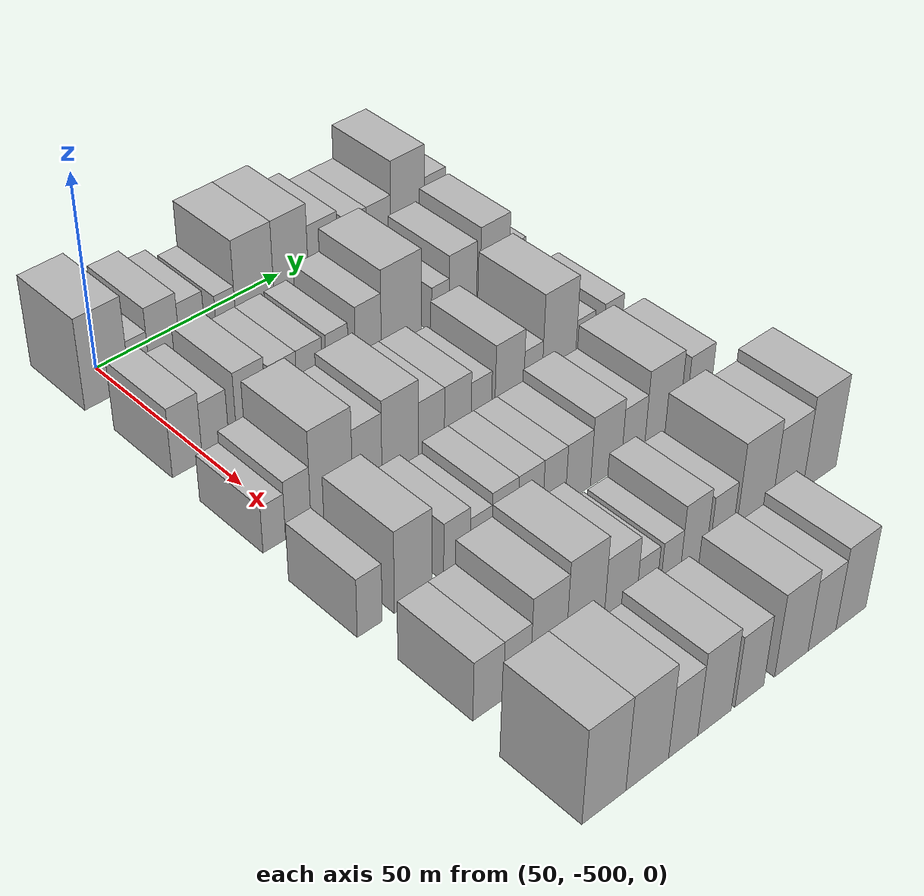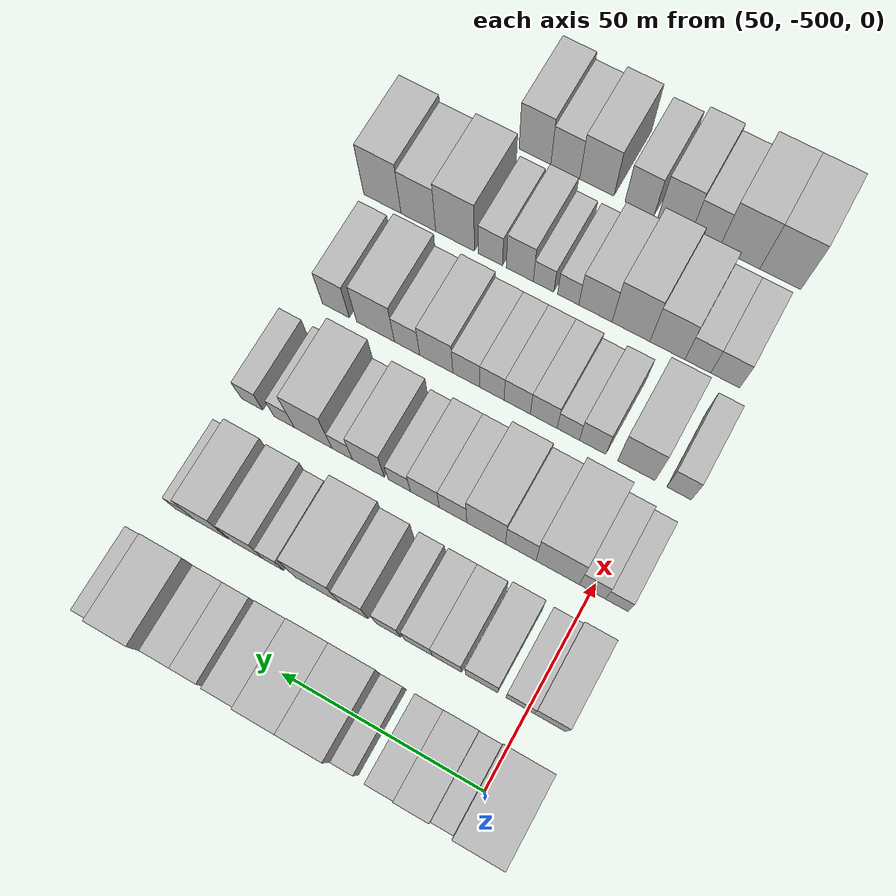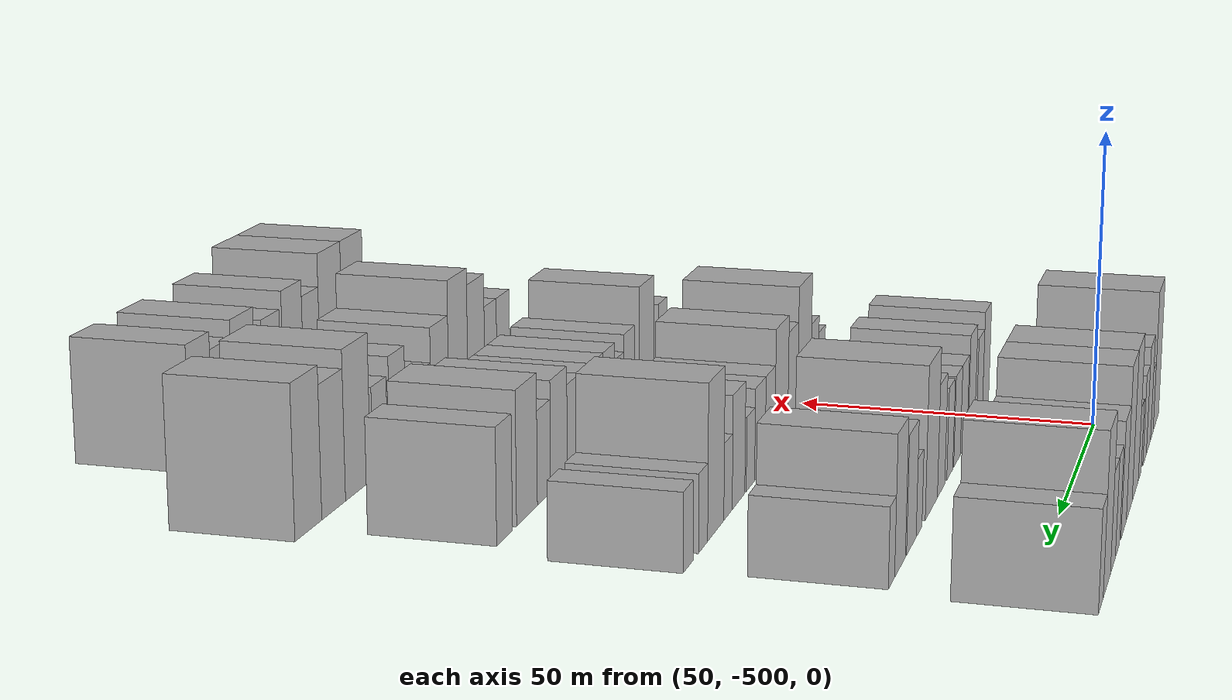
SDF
<sdf version="1.6">
 <world name="default">
  <model name="building_1">
   <static>1</static>
   <pose>50.0000 -504.2322 0 0.000000 0.000000 0.000000</pose>
   <link name="link">
    <pose>0 0 12.00 0 0 0</pose>
    <collision name="collision"><geometry><box><size>20.0000 11.5356 24.0000</size></box></geometry></collision>
    <visual name="visual">
     <cast_shadows>0</cast_shadows>
     <geometry><box><size>20.0000 11.5356 24.0000</size></box></geometry>
     <material>
      <script>
       <uri>model://HANNAS_wall/materials/scripts</uri>
       <uri>model://HANNAS_wall/materials/textures</uri>
       <name>vrc/HANNAS_wall</name>
      </script>
     </material>
    </visual>
   </link>
  </model>
  <model name="building_2">
   <static>1</static>
   <pose>50.0000 -495.8121 0 0.000000 0.000000 0.000000</pose>
   <link name="link">
    <pose>0 0 6.00 0 0 0</pose>
    <collision name="collision"><geometry><box><size>20.0000 5.3046 12.0000</size></box></geometry></collision>
    <visual name="visual">
     <cast_shadows>0</cast_shadows>
     <geometry><box><size>20.0000 5.3046 12.0000</size></box></geometry>
     <material>
      <script>
       <uri>model://HANNAS_wall/materials/scripts</uri>
       <uri>model://HANNAS_wall/materials/textures</uri>
       <name>vrc/HANNAS_wall</name>
      </script>
     </material>
    </visual>
   </link>
  </model>
  <model name="building_3">
   <static>1</static>
   <pose>50.0000 -489.0806 0 0.000000 0.000000 0.000000</pose>
   <link name="link">
    <pose>0 0 9.00 0 0 0</pose>
    <collision name="collision"><geometry><box><size>20.0000 8.1584 18.0000</size></box></geometry></collision>
    <visual name="visual">
     <cast_shadows>0</cast_shadows>
     <geometry><box><size>20.0000 8.1584 18.0000</size></box></geometry>
     <material>
      <script>
       <uri>model://HANNAS_wall/materials/scripts</uri>
       <uri>model://HANNAS_wall/materials/textures</uri>
       <name>vrc/HANNAS_wall</name>
      </script>
     </material>
    </visual>
   </link>
  </model>
  <model name="building_4">
   <static>1</static>
   <pose>50.0000 -481.6088 0 0.000000 0.000000 0.000000</pose>
   <link name="link">
    <pose>0 0 7.50 0 0 0</pose>
    <collision name="collision"><geometry><box><size>20.0000 6.7853 15.0000</size></box></geometry></collision>
    <visual name="visual">
     <cast_shadows>0</cast_shadows>
     <geometry><box><size>20.0000 6.7853 15.0000</size></box></geometry>
     <material>
      <script>
       <uri>model://HANNAS_wall/materials/scripts</uri>
       <uri>model://HANNAS_wall/materials/textures</uri>
       <name>vrc/HANNAS_wall</name>
      </script>
     </material>
    </visual>
   </link>
  </model>
  <model name="building_5">
   <static>1</static>
   <pose>50.0000 -472.5507 0 0.000000 0.000000 0.000000</pose>
   <link name="link">
    <pose>0 0 6.00 0 0 0</pose>
    <collision name="collision"><geometry><box><size>20.0000 5.3309 12.0000</size></box></geometry></collision>
    <visual name="visual">
     <cast_shadows>0</cast_shadows>
     <geometry><box><size>20.0000 5.3309 12.0000</size></box></geometry>
     <material>
      <script>
       <uri>model://HANNAS_wall/materials/scripts</uri>
       <uri>model://HANNAS_wall/materials/textures</uri>
       <name>vrc/HANNAS_wall</name>
      </script>
     </material>
    </visual>
   </link>
  </model>
  <model name="building_6">
   <static>1</static>
   <pose>50.0000 -464.5180 0 0.000000 0.000000 0.000000</pose>
   <link name="link">
    <pose>0 0 12.00 0 0 0</pose>
    <collision name="collision"><geometry><box><size>20.0000 10.7343 24.0000</size></box></geometry></collision>
    <visual name="visual">
     <cast_shadows>0</cast_shadows>
     <geometry><box><size>20.0000 10.7343 24.0000</size></box></geometry>
     <material>
      <script>
       <uri>model://HANNAS_wall/materials/scripts</uri>
       <uri>model://HANNAS_wall/materials/textures</uri>
       <name>vrc/HANNAS_wall</name>
      </script>
     </material>
    </visual>
   </link>
  </model>
  <model name="building_7">
   <static>1</static>
   <pose>50.0000 -454.2369 0 0.000000 0.000000 0.000000</pose>
   <link name="link">
    <pose>0 0 12.00 0 0 0</pose>
    <collision name="collision"><geometry><box><size>20.0000 9.8279 24.0000</size></box></geometry></collision>
    <visual name="visual">
     <cast_shadows>0</cast_shadows>
     <geometry><box><size>20.0000 9.8279 24.0000</size></box></geometry>
     <material>
      <script>
       <uri>model://HANNAS_wall/materials/scripts</uri>
       <uri>model://HANNAS_wall/materials/textures</uri>
       <name>vrc/HANNAS_wall</name>
      </script>
     </material>
    </visual>
   </link>
  </model>
  <model name="building_8">
   <static>1</static>
   <pose>50.0000 -445.0070 0 0.000000 0.000000 0.000000</pose>
   <link name="link">
    <pose>0 0 9.00 0 0 0</pose>
    <collision name="collision"><geometry><box><size>20.0000 8.6320 18.0000</size></box></geometry></collision>
    <visual name="visual">
     <cast_shadows>0</cast_shadows>
     <geometry><box><size>20.0000 8.6320 18.0000</size></box></geometry>
     <material>
      <script>
       <uri>model://HANNAS_wall/materials/scripts</uri>
       <uri>model://HANNAS_wall/materials/textures</uri>
       <name>vrc/HANNAS_wall</name>
      </script>
     </material>
    </visual>
   </link>
  </model>
  <model name="building_9">
   <static>1</static>
   <pose>50.0000 -435.4246 0 0.000000 0.000000 0.000000</pose>
   <link name="link">
    <pose>0 0 7.50 0 0 0</pose>
    <collision name="collision"><geometry><box><size>20.0000 6.5329 15.0000</size></box></geometry></collision>
    <visual name="visual">
     <cast_shadows>0</cast_shadows>
     <geometry><box><size>20.0000 6.5329 15.0000</size></box></geometry>
     <material>
      <script>
       <uri>model://HANNAS_wall/materials/scripts</uri>
       <uri>model://HANNAS_wall/materials/textures</uri>
       <name>vrc/HANNAS_wall</name>
      </script>
     </material>
    </visual>
   </link>
  </model>
  <model name="building_10">
   <static>1</static>
   <pose>50.0000 -428.5319 0 0.000000 0.000000 0.000000</pose>
   <link name="link">
    <pose>0 0 7.50 0 0 0</pose>
    <collision name="collision"><geometry><box><size>20.0000 7.2525 15.0000</size></box></geometry></collision>
    <visual name="visual">
     <cast_shadows>0</cast_shadows>
     <geometry><box><size>20.0000 7.2525 15.0000</size></box></geometry>
     <material>
      <script>
       <uri>model://HANNAS_wall/materials/scripts</uri>
       <uri>model://HANNAS_wall/materials/textures</uri>
       <name>vrc/HANNAS_wall</name>
      </script>
     </material>
    </visual>
   </link>
  </model>
  <model name="building_11">
   <static>1</static>
   <pose>50.0000 -419.7696 0 0.000000 0.000000 0.000000</pose>
   <link name="link">
    <pose>0 0 12.00 0 0 0</pose>
    <collision name="collision"><geometry><box><size>20.0000 10.2719 24.0000</size></box></geometry></collision>
    <visual name="visual">
     <cast_shadows>0</cast_shadows>
     <geometry><box><size>20.0000 10.2719 24.0000</size></box></geometry>
     <material>
      <script>
       <uri>model://HANNAS_wall/materials/scripts</uri>
       <uri>model://HANNAS_wall/materials/textures</uri>
       <name>vrc/HANNAS_wall</name>
      </script>
     </material>
    </visual>
   </link>
  </model>
  <model name="building_12">
   <static>1</static>
   <pose>50.0000 -411.3486 0 0.000000 0.000000 0.000000</pose>
   <link name="link">
    <pose>0 0 7.50 0 0 0</pose>
    <collision name="collision"><geometry><box><size>20.0000 6.5702 15.0000</size></box></geometry></collision>
    <visual name="visual">
     <cast_shadows>0</cast_shadows>
     <geometry><box><size>20.0000 6.5702 15.0000</size></box></geometry>
     <material>
      <script>
       <uri>model://HANNAS_wall/materials/scripts</uri>
       <uri>model://HANNAS_wall/materials/textures</uri>
       <name>vrc/HANNAS_wall</name>
      </script>
     </material>
    </visual>
   </link>
  </model>
  <model name="building_112">
   <static>1</static>
   <pose>79.0000 -505.1953 0 0.000000 0.000000 0.000000</pose>
   <link name="link">
    <pose>0 0 9.00 0 0 0</pose>
    <collision name="collision"><geometry><box><size>20.0000 7.6095 18.0000</size></box></geometry></collision>
    <visual name="visual">
     <cast_shadows>0</cast_shadows>
     <geometry><box><size>20.0000 7.6095 18.0000</size></box></geometry>
     <material>
      <script>
       <uri>model://HANNAS_wall/materials/scripts</uri>
       <uri>model://HANNAS_wall/materials/textures</uri>
       <name>vrc/HANNAS_wall</name>
      </script>
     </material>
    </visual>
   </link>
  </model>
  <model name="building_113">
   <static>1</static>
   <pose>79.0000 -497.9632 0 0.000000 0.000000 0.000000</pose>
   <link name="link">
    <pose>0 0 7.50 0 0 0</pose>
    <collision name="collision"><geometry><box><size>20.0000 6.8546 15.0000</size></box></geometry></collision>
    <visual name="visual">
     <cast_shadows>0</cast_shadows>
     <geometry><box><size>20.0000 6.8546 15.0000</size></box></geometry>
     <material>
      <script>
       <uri>model://HANNAS_wall/materials/scripts</uri>
       <uri>model://HANNAS_wall/materials/textures</uri>
       <name>vrc/HANNAS_wall</name>
      </script>
     </material>
    </visual>
   </link>
  </model>
  <model name="building_114">
   <static>1</static>
   <pose>79.0000 -488.6373 0 0.000000 0.000000 0.000000</pose>
   <link name="link">
    <pose>0 0 9.00 0 0 0</pose>
    <collision name="collision"><geometry><box><size>20.0000 7.7972 18.0000</size></box></geometry></collision>
    <visual name="visual">
     <cast_shadows>0</cast_shadows>
     <geometry><box><size>20.0000 7.7972 18.0000</size></box></geometry>
     <material>
      <script>
       <uri>model://HANNAS_wall/materials/scripts</uri>
       <uri>model://HANNAS_wall/materials/textures</uri>
       <name>vrc/HANNAS_wall</name>
      </script>
     </material>
    </visual>
   </link>
  </model>
  <model name="building_115">
   <static>1</static>
   <pose>79.0000 -480.0844 0 0.000000 0.000000 0.000000</pose>
   <link name="link">
    <pose>0 0 7.50 0 0 0</pose>
    <collision name="collision"><geometry><box><size>20.0000 7.3085 15.0000</size></box></geometry></collision>
    <visual name="visual">
     <cast_shadows>0</cast_shadows>
     <geometry><box><size>20.0000 7.3085 15.0000</size></box></geometry>
     <material>
      <script>
       <uri>model://HANNAS_wall/materials/scripts</uri>
       <uri>model://HANNAS_wall/materials/textures</uri>
       <name>vrc/HANNAS_wall</name>
      </script>
     </material>
    </visual>
   </link>
  </model>
  <model name="building_116">
   <static>1</static>
   <pose>79.0000 -472.9844 0 0.000000 0.000000 0.000000</pose>
   <link name="link">
    <pose>0 0 7.50 0 0 0</pose>
    <collision name="collision"><geometry><box><size>20.0000 6.8915 15.0000</size></box></geometry></collision>
    <visual name="visual">
     <cast_shadows>0</cast_shadows>
     <geometry><box><size>20.0000 6.8915 15.0000</size></box></geometry>
     <material>
      <script>
       <uri>model://HANNAS_wall/materials/scripts</uri>
       <uri>model://HANNAS_wall/materials/textures</uri>
       <name>vrc/HANNAS_wall</name>
      </script>
     </material>
    </visual>
   </link>
  </model>
  <model name="building_117">
   <static>1</static>
   <pose>79.0000 -465.4808 0 0.000000 0.000000 0.000000</pose>
   <link name="link">
    <pose>0 0 7.50 0 0 0</pose>
    <collision name="collision"><geometry><box><size>20.0000 6.1158 15.0000</size></box></geometry></collision>
    <visual name="visual">
     <cast_shadows>0</cast_shadows>
     <geometry><box><size>20.0000 6.1158 15.0000</size></box></geometry>
     <material>
      <script>
       <uri>model://HANNAS_wall/materials/scripts</uri>
       <uri>model://HANNAS_wall/materials/textures</uri>
       <name>vrc/HANNAS_wall</name>
      </script>
     </material>
    </visual>
   </link>
  </model>
  <model name="building_118">
   <static>1</static>
   <pose>79.0000 -456.8149 0 0.000000 0.000000 0.000000</pose>
   <link name="link">
    <pose>0 0 9.00 0 0 0</pose>
    <collision name="collision"><geometry><box><size>20.0000 7.2160 18.0000</size></box></geometry></collision>
    <visual name="visual">
     <cast_shadows>0</cast_shadows>
     <geometry><box><size>20.0000 7.2160 18.0000</size></box></geometry>
     <material>
      <script>
       <uri>model://HANNAS_wall/materials/scripts</uri>
       <uri>model://HANNAS_wall/materials/textures</uri>
       <name>vrc/HANNAS_wall</name>
      </script>
     </material>
    </visual>
   </link>
  </model>
  <model name="building_119">
   <static>1</static>
   <pose>79.0000 -447.4675 0 0.000000 0.000000 0.000000</pose>
   <link name="link">
    <pose>0 0 12.00 0 0 0</pose>
    <collision name="collision"><geometry><box><size>20.0000 11.4788 24.0000</size></box></geometry></collision>
    <visual name="visual">
     <cast_shadows>0</cast_shadows>
     <geometry><box><size>20.0000 11.4788 24.0000</size></box></geometry>
     <material>
      <script>
       <uri>model://HANNAS_wall/materials/scripts</uri>
       <uri>model://HANNAS_wall/materials/textures</uri>
       <name>vrc/HANNAS_wall</name>
      </script>
     </material>
    </visual>
   </link>
  </model>
  <model name="building_120">
   <static>1</static>
   <pose>79.0000 -436.1550 0 0.000000 0.000000 0.000000</pose>
   <link name="link">
    <pose>0 0 6.00 0 0 0</pose>
    <collision name="collision"><geometry><box><size>20.0000 5.1464 12.0000</size></box></geometry></collision>
    <visual name="visual">
     <cast_shadows>0</cast_shadows>
     <geometry><box><size>20.0000 5.1464 12.0000</size></box></geometry>
     <material>
      <script>
       <uri>model://HANNAS_wall/materials/scripts</uri>
       <uri>model://HANNAS_wall/materials/textures</uri>
       <name>vrc/HANNAS_wall</name>
      </script>
     </material>
    </visual>
   </link>
  </model>
  <model name="building_121">
   <static>1</static>
   <pose>79.0000 -429.4389 0 0.000000 0.000000 0.000000</pose>
   <link name="link">
    <pose>0 0 9.00 0 0 0</pose>
    <collision name="collision"><geometry><box><size>20.0000 8.2857 18.0000</size></box></geometry></collision>
    <visual name="visual">
     <cast_shadows>0</cast_shadows>
     <geometry><box><size>20.0000 8.2857 18.0000</size></box></geometry>
     <material>
      <script>
       <uri>model://HANNAS_wall/materials/scripts</uri>
       <uri>model://HANNAS_wall/materials/textures</uri>
       <name>vrc/HANNAS_wall</name>
      </script>
     </material>
    </visual>
   </link>
  </model>
  <model name="building_122">
   <static>1</static>
   <pose>79.0000 -419.8780 0 0.000000 0.000000 0.000000</pose>
   <link name="link">
    <pose>0 0 10.50 0 0 0</pose>
    <collision name="collision"><geometry><box><size>20.0000 8.8362 21.0000</size></box></geometry></collision>
    <visual name="visual">
     <cast_shadows>0</cast_shadows>
     <geometry><box><size>20.0000 8.8362 21.0000</size></box></geometry>
     <material>
      <script>
       <uri>model://HANNAS_wall/materials/scripts</uri>
       <uri>model://HANNAS_wall/materials/textures</uri>
       <name>vrc/HANNAS_wall</name>
      </script>
     </material>
    </visual>
   </link>
  </model>
  <model name="building_123">
   <static>1</static>
   <pose>79.0000 -412.9534 0 0.000000 0.000000 0.000000</pose>
   <link name="link">
    <pose>0 0 6.00 0 0 0</pose>
    <collision name="collision"><geometry><box><size>20.0000 5.0129 12.0000</size></box></geometry></collision>
    <visual name="visual">
     <cast_shadows>0</cast_shadows>
     <geometry><box><size>20.0000 5.0129 12.0000</size></box></geometry>
     <material>
      <script>
       <uri>model://HANNAS_wall/materials/scripts</uri>
       <uri>model://HANNAS_wall/materials/textures</uri>
       <name>vrc/HANNAS_wall</name>
      </script>
     </material>
    </visual>
   </link>
  </model>
  <model name="building_230">
   <static>1</static>
   <pose>108.0000 -506.1932 0 0.000000 0.000000 0.000000</pose>
   <link name="link">
    <pose>0 0 6.00 0 0 0</pose>
    <collision name="collision"><geometry><box><size>20.0000 5.6136 12.0000</size></box></geometry></collision>
    <visual name="visual">
     <cast_shadows>0</cast_shadows>
     <geometry><box><size>20.0000 5.6136 12.0000</size></box></geometry>
     <material>
      <script>
       <uri>model://HANNAS_wall/materials/scripts</uri>
       <uri>model://HANNAS_wall/materials/textures</uri>
       <name>vrc/HANNAS_wall</name>
      </script>
     </material>
    </visual>
   </link>
  </model>
  <model name="building_231">
   <static>1</static>
   <pose>108.0000 -500.1735 0 0.000000 0.000000 0.000000</pose>
   <link name="link">
    <pose>0 0 7.50 0 0 0</pose>
    <collision name="collision"><geometry><box><size>20.0000 6.4257 15.0000</size></box></geometry></collision>
    <visual name="visual">
     <cast_shadows>0</cast_shadows>
     <geometry><box><size>20.0000 6.4257 15.0000</size></box></geometry>
     <material>
      <script>
       <uri>model://HANNAS_wall/materials/scripts</uri>
       <uri>model://HANNAS_wall/materials/textures</uri>
       <name>vrc/HANNAS_wall</name>
      </script>
     </material>
    </visual>
   </link>
  </model>
  <model name="building_232">
   <static>1</static>
   <pose>108.0000 -491.5566 0 0.000000 0.000000 0.000000</pose>
   <link name="link">
    <pose>0 0 12.00 0 0 0</pose>
    <collision name="collision"><geometry><box><size>20.0000 10.8080 24.0000</size></box></geometry></collision>
    <visual name="visual">
     <cast_shadows>0</cast_shadows>
     <geometry><box><size>20.0000 10.8080 24.0000</size></box></geometry>
     <material>
      <script>
       <uri>model://HANNAS_wall/materials/scripts</uri>
       <uri>model://HANNAS_wall/materials/textures</uri>
       <name>vrc/HANNAS_wall</name>
      </script>
     </material>
    </visual>
   </link>
  </model>
  <model name="building_233">
   <static>1</static>
   <pose>108.0000 -482.3152 0 0.000000 0.000000 0.000000</pose>
   <link name="link">
    <pose>0 0 9.00 0 0 0</pose>
    <collision name="collision"><geometry><box><size>20.0000 7.6750 18.0000</size></box></geometry></collision>
    <visual name="visual">
     <cast_shadows>0</cast_shadows>
     <geometry><box><size>20.0000 7.6750 18.0000</size></box></geometry>
     <material>
      <script>
       <uri>model://HANNAS_wall/materials/scripts</uri>
       <uri>model://HANNAS_wall/materials/textures</uri>
       <name>vrc/HANNAS_wall</name>
      </script>
     </material>
    </visual>
   </link>
  </model>
  <model name="building_234">
   <static>1</static>
   <pose>108.0000 -473.5606 0 0.000000 0.000000 0.000000</pose>
   <link name="link">
    <pose>0 0 10.50 0 0 0</pose>
    <collision name="collision"><geometry><box><size>20.0000 9.8342 21.0000</size></box></geometry></collision>
    <visual name="visual">
     <cast_shadows>0</cast_shadows>
     <geometry><box><size>20.0000 9.8342 21.0000</size></box></geometry>
     <material>
      <script>
       <uri>model://HANNAS_wall/materials/scripts</uri>
       <uri>model://HANNAS_wall/materials/textures</uri>
       <name>vrc/HANNAS_wall</name>
      </script>
     </material>
    </visual>
   </link>
  </model>
  <model name="building_235">
   <static>1</static>
   <pose>108.0000 -465.1092 0 0.000000 0.000000 0.000000</pose>
   <link name="link">
    <pose>0 0 7.50 0 0 0</pose>
    <collision name="collision"><geometry><box><size>20.0000 7.0687 15.0000</size></box></geometry></collision>
    <visual name="visual">
     <cast_shadows>0</cast_shadows>
     <geometry><box><size>20.0000 7.0687 15.0000</size></box></geometry>
     <material>
      <script>
       <uri>model://HANNAS_wall/materials/scripts</uri>
       <uri>model://HANNAS_wall/materials/textures</uri>
       <name>vrc/HANNAS_wall</name>
      </script>
     </material>
    </visual>
   </link>
  </model>
  <model name="building_236">
   <static>1</static>
   <pose>108.0000 -457.8541 0 0.000000 0.000000 0.000000</pose>
   <link name="link">
    <pose>0 0 7.50 0 0 0</pose>
    <collision name="collision"><geometry><box><size>20.0000 7.4415 15.0000</size></box></geometry></collision>
    <visual name="visual">
     <cast_shadows>0</cast_shadows>
     <geometry><box><size>20.0000 7.4415 15.0000</size></box></geometry>
     <material>
      <script>
       <uri>model://HANNAS_wall/materials/scripts</uri>
       <uri>model://HANNAS_wall/materials/textures</uri>
       <name>vrc/HANNAS_wall</name>
      </script>
     </material>
    </visual>
   </link>
  </model>
  <model name="building_237">
   <static>1</static>
   <pose>108.0000 -451.2438 0 0.000000 0.000000 0.000000</pose>
   <link name="link">
    <pose>0 0 6.00 0 0 0</pose>
    <collision name="collision"><geometry><box><size>20.0000 5.7790 12.0000</size></box></geometry></collision>
    <visual name="visual">
     <cast_shadows>0</cast_shadows>
     <geometry><box><size>20.0000 5.7790 12.0000</size></box></geometry>
     <material>
      <script>
       <uri>model://HANNAS_wall/materials/scripts</uri>
       <uri>model://HANNAS_wall/materials/textures</uri>
       <name>vrc/HANNAS_wall</name>
      </script>
     </material>
    </visual>
   </link>
  </model>
  <model name="building_238">
   <static>1</static>
   <pose>108.0000 -443.1969 0 0.000000 0.000000 0.000000</pose>
   <link name="link">
    <pose>0 0 9.00 0 0 0</pose>
    <collision name="collision"><geometry><box><size>20.0000 8.3149 18.0000</size></box></geometry></collision>
    <visual name="visual">
     <cast_shadows>0</cast_shadows>
     <geometry><box><size>20.0000 8.3149 18.0000</size></box></geometry>
     <material>
      <script>
       <uri>model://HANNAS_wall/materials/scripts</uri>
       <uri>model://HANNAS_wall/materials/textures</uri>
       <name>vrc/HANNAS_wall</name>
      </script>
     </material>
    </visual>
   </link>
  </model>
  <model name="building_239">
   <static>1</static>
   <pose>108.0000 -436.3360 0 0.000000 0.000000 0.000000</pose>
   <link name="link">
    <pose>0 0 6.00 0 0 0</pose>
    <collision name="collision"><geometry><box><size>20.0000 5.4069 12.0000</size></box></geometry></collision>
    <visual name="visual">
     <cast_shadows>0</cast_shadows>
     <geometry><box><size>20.0000 5.4069 12.0000</size></box></geometry>
     <material>
      <script>
       <uri>model://HANNAS_wall/materials/scripts</uri>
       <uri>model://HANNAS_wall/materials/textures</uri>
       <name>vrc/HANNAS_wall</name>
      </script>
     </material>
    </visual>
   </link>
  </model>
  <model name="building_240">
   <static>1</static>
   <pose>108.0000 -428.6167 0 0.000000 0.000000 0.000000</pose>
   <link name="link">
    <pose>0 0 12.00 0 0 0</pose>
    <collision name="collision"><geometry><box><size>20.0000 10.0317 24.0000</size></box></geometry></collision>
    <visual name="visual">
     <cast_shadows>0</cast_shadows>
     <geometry><box><size>20.0000 10.0317 24.0000</size></box></geometry>
     <material>
      <script>
       <uri>model://HANNAS_wall/materials/scripts</uri>
       <uri>model://HANNAS_wall/materials/textures</uri>
       <name>vrc/HANNAS_wall</name>
      </script>
     </material>
    </visual>
   </link>
  </model>
  <model name="building_241">
   <static>1</static>
   <pose>108.0000 -420.8690 0 0.000000 0.000000 0.000000</pose>
   <link name="link">
    <pose>0 0 6.00 0 0 0</pose>
    <collision name="collision"><geometry><box><size>20.0000 5.4638 12.0000</size></box></geometry></collision>
    <visual name="visual">
     <cast_shadows>0</cast_shadows>
     <geometry><box><size>20.0000 5.4638 12.0000</size></box></geometry>
     <material>
      <script>
       <uri>model://HANNAS_wall/materials/scripts</uri>
       <uri>model://HANNAS_wall/materials/textures</uri>
       <name>vrc/HANNAS_wall</name>
      </script>
     </material>
    </visual>
   </link>
  </model>
  <model name="building_242">
   <static>1</static>
   <pose>108.0000 -412.2300 0 0.000000 0.000000 0.000000</pose>
   <link name="link">
    <pose>0 0 6.00 0 0 0</pose>
    <collision name="collision"><geometry><box><size>20.0000 5.8140 12.0000</size></box></geometry></collision>
    <visual name="visual">
     <cast_shadows>0</cast_shadows>
     <geometry><box><size>20.0000 5.8140 12.0000</size></box></geometry>
     <material>
      <script>
       <uri>model://HANNAS_wall/materials/scripts</uri>
       <uri>model://HANNAS_wall/materials/textures</uri>
       <name>vrc/HANNAS_wall</name>
      </script>
     </material>
    </visual>
   </link>
  </model>
  <model name="building_340">
   <static>1</static>
   <pose>137.0000 -506.9324 0 0.000000 0.000000 0.000000</pose>
   <link name="link">
    <pose>0 0 7.50 0 0 0</pose>
    <collision name="collision"><geometry><box><size>20.0000 6.1353 15.0000</size></box></geometry></collision>
    <visual name="visual">
     <cast_shadows>0</cast_shadows>
     <geometry><box><size>20.0000 6.1353 15.0000</size></box></geometry>
     <material>
      <script>
       <uri>model://HANNAS_wall/materials/scripts</uri>
       <uri>model://HANNAS_wall/materials/textures</uri>
       <name>vrc/HANNAS_wall</name>
      </script>
     </material>
    </visual>
   </link>
  </model>
  <model name="building_341">
   <static>1</static>
   <pose>137.0000 -496.1357 0 0.000000 0.000000 0.000000</pose>
   <link name="link">
    <pose>0 0 10.50 0 0 0</pose>
    <collision name="collision"><geometry><box><size>20.0000 9.4581 21.0000</size></box></geometry></collision>
    <visual name="visual">
     <cast_shadows>0</cast_shadows>
     <geometry><box><size>20.0000 9.4581 21.0000</size></box></geometry>
     <material>
      <script>
       <uri>model://HANNAS_wall/materials/scripts</uri>
       <uri>model://HANNAS_wall/materials/textures</uri>
       <name>vrc/HANNAS_wall</name>
      </script>
     </material>
    </visual>
   </link>
  </model>
  <model name="building_342">
   <static>1</static>
   <pose>137.0000 -485.0158 0 0.000000 0.000000 0.000000</pose>
   <link name="link">
    <pose>0 0 7.50 0 0 0</pose>
    <collision name="collision"><geometry><box><size>20.0000 6.7816 15.0000</size></box></geometry></collision>
    <visual name="visual">
     <cast_shadows>0</cast_shadows>
     <geometry><box><size>20.0000 6.7816 15.0000</size></box></geometry>
     <material>
      <script>
       <uri>model://HANNAS_wall/materials/scripts</uri>
       <uri>model://HANNAS_wall/materials/textures</uri>
       <name>vrc/HANNAS_wall</name>
      </script>
     </material>
    </visual>
   </link>
  </model>
  <model name="building_343">
   <static>1</static>
   <pose>137.0000 -478.7551 0 0.000000 0.000000 0.000000</pose>
   <link name="link">
    <pose>0 0 6.00 0 0 0</pose>
    <collision name="collision"><geometry><box><size>20.0000 5.7399 12.0000</size></box></geometry></collision>
    <visual name="visual">
     <cast_shadows>0</cast_shadows>
     <geometry><box><size>20.0000 5.7399 12.0000</size></box></geometry>
     <material>
      <script>
       <uri>model://HANNAS_wall/materials/scripts</uri>
       <uri>model://HANNAS_wall/materials/textures</uri>
       <name>vrc/HANNAS_wall</name>
      </script>
     </material>
    </visual>
   </link>
  </model>
  <model name="building_344">
   <static>1</static>
   <pose>137.0000 -472.4056 0 0.000000 0.000000 0.000000</pose>
   <link name="link">
    <pose>0 0 7.50 0 0 0</pose>
    <collision name="collision"><geometry><box><size>20.0000 6.9592 15.0000</size></box></geometry></collision>
    <visual name="visual">
     <cast_shadows>0</cast_shadows>
     <geometry><box><size>20.0000 6.9592 15.0000</size></box></geometry>
     <material>
      <script>
       <uri>model://HANNAS_wall/materials/scripts</uri>
       <uri>model://HANNAS_wall/materials/textures</uri>
       <name>vrc/HANNAS_wall</name>
      </script>
     </material>
    </visual>
   </link>
  </model>
  <model name="building_345">
   <static>1</static>
   <pose>137.0000 -465.4947 0 0.000000 0.000000 0.000000</pose>
   <link name="link">
    <pose>0 0 7.50 0 0 0</pose>
    <collision name="collision"><geometry><box><size>20.0000 6.8625 15.0000</size></box></geometry></collision>
    <visual name="visual">
     <cast_shadows>0</cast_shadows>
     <geometry><box><size>20.0000 6.8625 15.0000</size></box></geometry>
     <material>
      <script>
       <uri>model://HANNAS_wall/materials/scripts</uri>
       <uri>model://HANNAS_wall/materials/textures</uri>
       <name>vrc/HANNAS_wall</name>
      </script>
     </material>
    </visual>
   </link>
  </model>
  <model name="building_346">
   <static>1</static>
   <pose>137.0000 -458.8822 0 0.000000 0.000000 0.000000</pose>
   <link name="link">
    <pose>0 0 7.50 0 0 0</pose>
    <collision name="collision"><geometry><box><size>20.0000 6.3625 15.0000</size></box></geometry></collision>
    <visual name="visual">
     <cast_shadows>0</cast_shadows>
     <geometry><box><size>20.0000 6.3625 15.0000</size></box></geometry>
     <material>
      <script>
       <uri>model://HANNAS_wall/materials/scripts</uri>
       <uri>model://HANNAS_wall/materials/textures</uri>
       <name>vrc/HANNAS_wall</name>
      </script>
     </material>
    </visual>
   </link>
  </model>
  <model name="building_347">
   <static>1</static>
   <pose>137.0000 -452.1456 0 0.000000 0.000000 0.000000</pose>
   <link name="link">
    <pose>0 0 7.50 0 0 0</pose>
    <collision name="collision"><geometry><box><size>20.0000 7.1107 15.0000</size></box></geometry></collision>
    <visual name="visual">
     <cast_shadows>0</cast_shadows>
     <geometry><box><size>20.0000 7.1107 15.0000</size></box></geometry>
     <material>
      <script>
       <uri>model://HANNAS_wall/materials/scripts</uri>
       <uri>model://HANNAS_wall/materials/textures</uri>
       <name>vrc/HANNAS_wall</name>
      </script>
     </material>
    </visual>
   </link>
  </model>
  <model name="building_348">
   <static>1</static>
   <pose>137.0000 -444.1709 0 0.000000 0.000000 0.000000</pose>
   <link name="link">
    <pose>0 0 9.00 0 0 0</pose>
    <collision name="collision"><geometry><box><size>20.0000 8.8388 18.0000</size></box></geometry></collision>
    <visual name="visual">
     <cast_shadows>0</cast_shadows>
     <geometry><box><size>20.0000 8.8388 18.0000</size></box></geometry>
     <material>
      <script>
       <uri>model://HANNAS_wall/materials/scripts</uri>
       <uri>model://HANNAS_wall/materials/textures</uri>
       <name>vrc/HANNAS_wall</name>
      </script>
     </material>
    </visual>
   </link>
  </model>
  <model name="building_349">
   <static>1</static>
   <pose>137.0000 -436.3668 0 0.000000 0.000000 0.000000</pose>
   <link name="link">
    <pose>0 0 7.50 0 0 0</pose>
    <collision name="collision"><geometry><box><size>20.0000 6.7695 15.0000</size></box></geometry></collision>
    <visual name="visual">
     <cast_shadows>0</cast_shadows>
     <geometry><box><size>20.0000 6.7695 15.0000</size></box></geometry>
     <material>
      <script>
       <uri>model://HANNAS_wall/materials/scripts</uri>
       <uri>model://HANNAS_wall/materials/textures</uri>
       <name>vrc/HANNAS_wall</name>
      </script>
     </material>
    </visual>
   </link>
  </model>
  <model name="building_350">
   <static>1</static>
   <pose>137.0000 -427.8691 0 0.000000 0.000000 0.000000</pose>
   <link name="link">
    <pose>0 0 10.50 0 0 0</pose>
    <collision name="collision"><geometry><box><size>20.0000 10.2257 21.0000</size></box></geometry></collision>
    <visual name="visual">
     <cast_shadows>0</cast_shadows>
     <geometry><box><size>20.0000 10.2257 21.0000</size></box></geometry>
     <material>
      <script>
       <uri>model://HANNAS_wall/materials/scripts</uri>
       <uri>model://HANNAS_wall/materials/textures</uri>
       <name>vrc/HANNAS_wall</name>
      </script>
     </material>
    </visual>
   </link>
  </model>
  <model name="building_351">
   <static>1</static>
   <pose>137.0000 -417.0870 0 0.000000 0.000000 0.000000</pose>
   <link name="link">
    <pose>0 0 9.00 0 0 0</pose>
    <collision name="collision"><geometry><box><size>20.0000 7.3386 18.0000</size></box></geometry></collision>
    <visual name="visual">
     <cast_shadows>0</cast_shadows>
     <geometry><box><size>20.0000 7.3386 18.0000</size></box></geometry>
     <material>
      <script>
       <uri>model://HANNAS_wall/materials/scripts</uri>
       <uri>model://HANNAS_wall/materials/textures</uri>
       <name>vrc/HANNAS_wall</name>
      </script>
     </material>
    </visual>
   </link>
  </model>
  <model name="building_459">
   <static>1</static>
   <pose>166.0000 -504.2908 0 0.000000 0.000000 0.000000</pose>
   <link name="link">
    <pose>0 0 7.50 0 0 0</pose>
    <collision name="collision"><geometry><box><size>20.0000 7.4183 15.0000</size></box></geometry></collision>
    <visual name="visual">
     <cast_shadows>0</cast_shadows>
     <geometry><box><size>20.0000 7.4183 15.0000</size></box></geometry>
     <material>
      <script>
       <uri>model://HANNAS_wall/materials/scripts</uri>
       <uri>model://HANNAS_wall/materials/textures</uri>
       <name>vrc/HANNAS_wall</name>
      </script>
     </material>
    </visual>
   </link>
  </model>
  <model name="building_460">
   <static>1</static>
   <pose>166.0000 -497.2320 0 0.000000 0.000000 0.000000</pose>
   <link name="link">
    <pose>0 0 7.50 0 0 0</pose>
    <collision name="collision"><geometry><box><size>20.0000 6.6994 15.0000</size></box></geometry></collision>
    <visual name="visual">
     <cast_shadows>0</cast_shadows>
     <geometry><box><size>20.0000 6.6994 15.0000</size></box></geometry>
     <material>
      <script>
       <uri>model://HANNAS_wall/materials/scripts</uri>
       <uri>model://HANNAS_wall/materials/textures</uri>
       <name>vrc/HANNAS_wall</name>
      </script>
     </material>
    </visual>
   </link>
  </model>
  <model name="building_461">
   <static>1</static>
   <pose>166.0000 -489.3454 0 0.000000 0.000000 0.000000</pose>
   <link name="link">
    <pose>0 0 10.50 0 0 0</pose>
    <collision name="collision"><geometry><box><size>20.0000 9.0737 21.0000</size></box></geometry></collision>
    <visual name="visual">
     <cast_shadows>0</cast_shadows>
     <geometry><box><size>20.0000 9.0737 21.0000</size></box></geometry>
     <material>
      <script>
       <uri>model://HANNAS_wall/materials/scripts</uri>
       <uri>model://HANNAS_wall/materials/textures</uri>
       <name>vrc/HANNAS_wall</name>
      </script>
     </material>
    </visual>
   </link>
  </model>
  <model name="building_462">
   <static>1</static>
   <pose>166.0000 -479.8489 0 0.000000 0.000000 0.000000</pose>
   <link name="link">
    <pose>0 0 12.00 0 0 0</pose>
    <collision name="collision"><geometry><box><size>20.0000 9.9192 24.0000</size></box></geometry></collision>
    <visual name="visual">
     <cast_shadows>0</cast_shadows>
     <geometry><box><size>20.0000 9.9192 24.0000</size></box></geometry>
     <material>
      <script>
       <uri>model://HANNAS_wall/materials/scripts</uri>
       <uri>model://HANNAS_wall/materials/textures</uri>
       <name>vrc/HANNAS_wall</name>
      </script>
     </material>
    </visual>
   </link>
  </model>
  <model name="building_463">
   <static>1</static>
   <pose>166.0000 -470.4875 0 0.000000 0.000000 0.000000</pose>
   <link name="link">
    <pose>0 0 9.00 0 0 0</pose>
    <collision name="collision"><geometry><box><size>20.0000 8.8037 18.0000</size></box></geometry></collision>
    <visual name="visual">
     <cast_shadows>0</cast_shadows>
     <geometry><box><size>20.0000 8.8037 18.0000</size></box></geometry>
     <material>
      <script>
       <uri>model://HANNAS_wall/materials/scripts</uri>
       <uri>model://HANNAS_wall/materials/textures</uri>
       <name>vrc/HANNAS_wall</name>
      </script>
     </material>
    </visual>
   </link>
  </model>
  <model name="building_464">
   <static>1</static>
   <pose>166.0000 -463.2597 0 0.000000 0.000000 0.000000</pose>
   <link name="link">
    <pose>0 0 6.00 0 0 0</pose>
    <collision name="collision"><geometry><box><size>20.0000 5.6520 12.0000</size></box></geometry></collision>
    <visual name="visual">
     <cast_shadows>0</cast_shadows>
     <geometry><box><size>20.0000 5.6520 12.0000</size></box></geometry>
     <material>
      <script>
       <uri>model://HANNAS_wall/materials/scripts</uri>
       <uri>model://HANNAS_wall/materials/textures</uri>
       <name>vrc/HANNAS_wall</name>
      </script>
     </material>
    </visual>
   </link>
  </model>
  <model name="building_465">
   <static>1</static>
   <pose>166.0000 -456.6923 0 0.000000 0.000000 0.000000</pose>
   <link name="link">
    <pose>0 0 6.00 0 0 0</pose>
    <collision name="collision"><geometry><box><size>20.0000 5.4829 12.0000</size></box></geometry></collision>
    <visual name="visual">
     <cast_shadows>0</cast_shadows>
     <geometry><box><size>20.0000 5.4829 12.0000</size></box></geometry>
     <material>
      <script>
       <uri>model://HANNAS_wall/materials/scripts</uri>
       <uri>model://HANNAS_wall/materials/textures</uri>
       <name>vrc/HANNAS_wall</name>
      </script>
     </material>
    </visual>
   </link>
  </model>
  <model name="building_466">
   <static>1</static>
   <pose>166.0000 -450.3020 0 0.000000 0.000000 0.000000</pose>
   <link name="link">
    <pose>0 0 9.00 0 0 0</pose>
    <collision name="collision"><geometry><box><size>20.0000 7.2977 18.0000</size></box></geometry></collision>
    <visual name="visual">
     <cast_shadows>0</cast_shadows>
     <geometry><box><size>20.0000 7.2977 18.0000</size></box></geometry>
     <material>
      <script>
       <uri>model://HANNAS_wall/materials/scripts</uri>
       <uri>model://HANNAS_wall/materials/textures</uri>
       <name>vrc/HANNAS_wall</name>
      </script>
     </material>
    </visual>
   </link>
  </model>
  <model name="building_467">
   <static>1</static>
   <pose>166.0000 -442.3444 0 0.000000 0.000000 0.000000</pose>
   <link name="link">
    <pose>0 0 7.50 0 0 0</pose>
    <collision name="collision"><geometry><box><size>20.0000 6.6174 15.0000</size></box></geometry></collision>
    <visual name="visual">
     <cast_shadows>0</cast_shadows>
     <geometry><box><size>20.0000 6.6174 15.0000</size></box></geometry>
     <material>
      <script>
       <uri>model://HANNAS_wall/materials/scripts</uri>
       <uri>model://HANNAS_wall/materials/textures</uri>
       <name>vrc/HANNAS_wall</name>
      </script>
     </material>
    </visual>
   </link>
  </model>
  <model name="building_468">
   <static>1</static>
   <pose>166.0000 -432.7154 0 0.000000 0.000000 0.000000</pose>
   <link name="link">
    <pose>0 0 12.00 0 0 0</pose>
    <collision name="collision"><geometry><box><size>20.0000 10.6405 24.0000</size></box></geometry></collision>
    <visual name="visual">
     <cast_shadows>0</cast_shadows>
     <geometry><box><size>20.0000 10.6405 24.0000</size></box></geometry>
     <material>
      <script>
       <uri>model://HANNAS_wall/materials/scripts</uri>
       <uri>model://HANNAS_wall/materials/textures</uri>
       <name>vrc/HANNAS_wall</name>
      </script>
     </material>
    </visual>
   </link>
  </model>
  <model name="building_469">
   <static>1</static>
   <pose>166.0000 -422.6102 0 0.000000 0.000000 0.000000</pose>
   <link name="link">
    <pose>0 0 10.50 0 0 0</pose>
    <collision name="collision"><geometry><box><size>20.0000 9.5700 21.0000</size></box></geometry></collision>
    <visual name="visual">
     <cast_shadows>0</cast_shadows>
     <geometry><box><size>20.0000 9.5700 21.0000</size></box></geometry>
     <material>
      <script>
       <uri>model://HANNAS_wall/materials/scripts</uri>
       <uri>model://HANNAS_wall/materials/textures</uri>
       <name>vrc/HANNAS_wall</name>
      </script>
     </material>
    </visual>
   </link>
  </model>
  <model name="building_470">
   <static>1</static>
   <pose>166.0000 -412.6352 0 0.000000 0.000000 0.000000</pose>
   <link name="link">
    <pose>0 0 12.00 0 0 0</pose>
    <collision name="collision"><geometry><box><size>20.0000 10.3801 24.0000</size></box></geometry></collision>
    <visual name="visual">
     <cast_shadows>0</cast_shadows>
     <geometry><box><size>20.0000 10.3801 24.0000</size></box></geometry>
     <material>
      <script>
       <uri>model://HANNAS_wall/materials/scripts</uri>
       <uri>model://HANNAS_wall/materials/textures</uri>
       <name>vrc/HANNAS_wall</name>
      </script>
     </material>
    </visual>
   </link>
  </model>
  <model name="building_577">
   <static>1</static>
   <pose>195.0000 -504.6427 0 0.000000 0.000000 0.000000</pose>
   <link name="link">
    <pose>0 0 12.00 0 0 0</pose>
    <collision name="collision"><geometry><box><size>20.0000 10.7145 24.0000</size></box></geometry></collision>
    <visual name="visual">
     <cast_shadows>0</cast_shadows>
     <geometry><box><size>20.0000 10.7145 24.0000</size></box></geometry>
     <material>
      <script>
       <uri>model://HANNAS_wall/materials/scripts</uri>
       <uri>model://HANNAS_wall/materials/textures</uri>
       <name>vrc/HANNAS_wall</name>
      </script>
     </material>
    </visual>
   </link>
  </model>
  <model name="building_578">
   <static>1</static>
   <pose>195.0000 -493.9151 0 0.000000 0.000000 0.000000</pose>
   <link name="link">
    <pose>0 0 12.00 0 0 0</pose>
    <collision name="collision"><geometry><box><size>20.0000 10.7407 24.0000</size></box></geometry></collision>
    <visual name="visual">
     <cast_shadows>0</cast_shadows>
     <geometry><box><size>20.0000 10.7407 24.0000</size></box></geometry>
     <material>
      <script>
       <uri>model://HANNAS_wall/materials/scripts</uri>
       <uri>model://HANNAS_wall/materials/textures</uri>
       <name>vrc/HANNAS_wall</name>
      </script>
     </material>
    </visual>
   </link>
  </model>
  <model name="building_579">
   <static>1</static>
   <pose>195.0000 -484.7721 0 0.000000 0.000000 0.000000</pose>
   <link name="link">
    <pose>0 0 9.00 0 0 0</pose>
    <collision name="collision"><geometry><box><size>20.0000 7.5452 18.0000</size></box></geometry></collision>
    <visual name="visual">
     <cast_shadows>0</cast_shadows>
     <geometry><box><size>20.0000 7.5452 18.0000</size></box></geometry>
     <material>
      <script>
       <uri>model://HANNAS_wall/materials/scripts</uri>
       <uri>model://HANNAS_wall/materials/textures</uri>
       <name>vrc/HANNAS_wall</name>
      </script>
     </material>
    </visual>
   </link>
  </model>
  <model name="building_580">
   <static>1</static>
   <pose>195.0000 -476.5851 0 0.000000 0.000000 0.000000</pose>
   <link name="link">
    <pose>0 0 10.50 0 0 0</pose>
    <collision name="collision"><geometry><box><size>20.0000 8.8289 21.0000</size></box></geometry></collision>
    <visual name="visual">
     <cast_shadows>0</cast_shadows>
     <geometry><box><size>20.0000 8.8289 21.0000</size></box></geometry>
     <material>
      <script>
       <uri>model://HANNAS_wall/materials/scripts</uri>
       <uri>model://HANNAS_wall/materials/textures</uri>
       <name>vrc/HANNAS_wall</name>
      </script>
     </material>
    </visual>
   </link>
  </model>
  <model name="building_581">
   <static>1</static>
   <pose>195.0000 -467.2658 0 0.000000 0.000000 0.000000</pose>
   <link name="link">
    <pose>0 0 9.00 0 0 0</pose>
    <collision name="collision"><geometry><box><size>20.0000 7.8097 18.0000</size></box></geometry></collision>
    <visual name="visual">
     <cast_shadows>0</cast_shadows>
     <geometry><box><size>20.0000 7.8097 18.0000</size></box></geometry>
     <material>
      <script>
       <uri>model://HANNAS_wall/materials/scripts</uri>
       <uri>model://HANNAS_wall/materials/textures</uri>
       <name>vrc/HANNAS_wall</name>
      </script>
     </material>
    </visual>
   </link>
  </model>
  <model name="building_582">
   <static>1</static>
   <pose>195.0000 -455.6800 0 0.000000 0.000000 0.000000</pose>
   <link name="link">
    <pose>0 0 10.50 0 0 0</pose>
    <collision name="collision"><geometry><box><size>20.0000 9.3619 21.0000</size></box></geometry></collision>
    <visual name="visual">
     <cast_shadows>0</cast_shadows>
     <geometry><box><size>20.0000 9.3619 21.0000</size></box></geometry>
     <material>
      <script>
       <uri>model://HANNAS_wall/materials/scripts</uri>
       <uri>model://HANNAS_wall/materials/textures</uri>
       <name>vrc/HANNAS_wall</name>
      </script>
     </material>
    </visual>
   </link>
  </model>
  <model name="building_583">
   <static>1</static>
   <pose>195.0000 -447.0326 0 0.000000 0.000000 0.000000</pose>
   <link name="link">
    <pose>0 0 9.00 0 0 0</pose>
    <collision name="collision"><geometry><box><size>20.0000 7.9329 18.0000</size></box></geometry></collision>
    <visual name="visual">
     <cast_shadows>0</cast_shadows>
     <geometry><box><size>20.0000 7.9329 18.0000</size></box></geometry>
     <material>
      <script>
       <uri>model://HANNAS_wall/materials/scripts</uri>
       <uri>model://HANNAS_wall/materials/textures</uri>
       <name>vrc/HANNAS_wall</name>
      </script>
     </material>
    </visual>
   </link>
  </model>
  <model name="building_584">
   <static>1</static>
   <pose>195.0000 -438.6496 0 0.000000 0.000000 0.000000</pose>
   <link name="link">
    <pose>0 0 10.50 0 0 0</pose>
    <collision name="collision"><geometry><box><size>20.0000 8.8332 21.0000</size></box></geometry></collision>
    <visual name="visual">
     <cast_shadows>0</cast_shadows>
     <geometry><box><size>20.0000 8.8332 21.0000</size></box></geometry>
     <material>
      <script>
       <uri>model://HANNAS_wall/materials/scripts</uri>
       <uri>model://HANNAS_wall/materials/textures</uri>
       <name>vrc/HANNAS_wall</name>
      </script>
     </material>
    </visual>
   </link>
  </model>
 </world>
</sdf>
